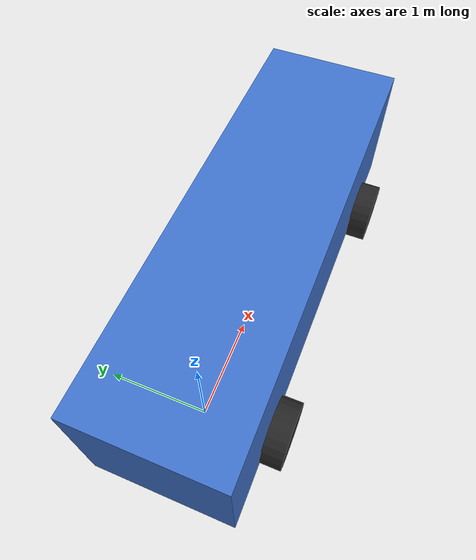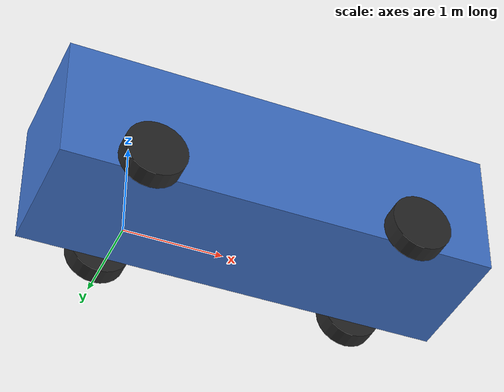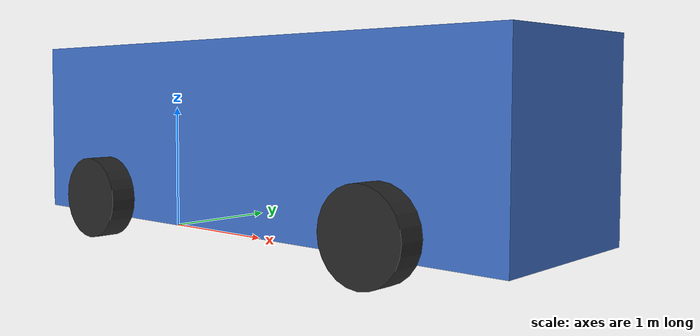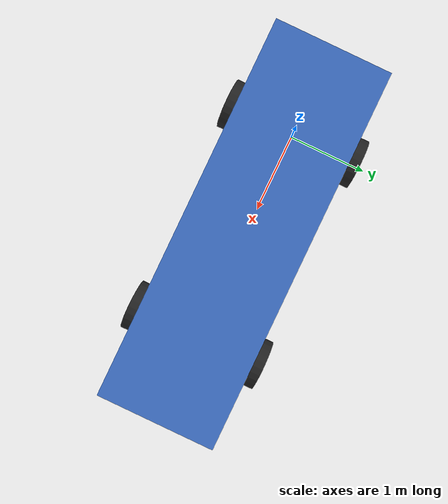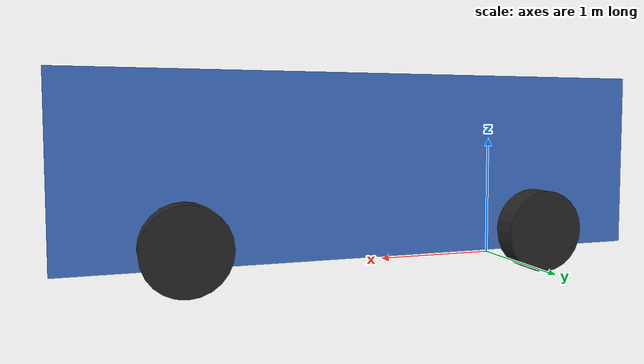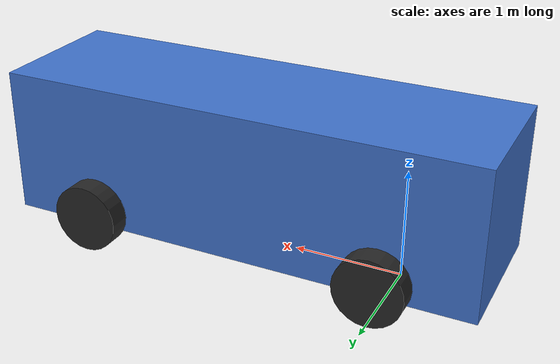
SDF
<?xml version="1.0" ?>
<sdf version="1.9">
  <model name="ego_vehicle">
    <link name="base_link">
      <inertial>
        <!-- 质心不在几何中心：真车质量集中在下半部，用 com_height_m 显式指定。
             放在几何中心会让车过弯时侧倾偏大，看着像悬架太软。 -->
        <pose>1.3500 0 0.5500 0 0 0</pose>
        <mass>1440.0000</mass>
        <inertia>
          <ixx>434.172000</ixx><iyy>2538.672000</iyy><izz>2541.900000</izz>
          <ixy>0</ixy><ixz>0</ixz><iyz>0</iyz>
        </inertia>
      </inertial>
      <collision name="collision">
        <pose>1.3500 0 0.8300 0 0 0</pose>
        <geometry>
          <box><size>4.4000 1.3500 1.3400</size></box>
        </geometry>
      </collision>
      <visual name="visual">
        <pose>1.3500 0 0.8300 0 0 0</pose>
        <geometry>
          <box><size>4.4000 1.3500 1.3400</size></box>
        </geometry>
        <material>
          <ambient>0.2 0.35 0.6 1</ambient>
          <diffuse>0.25 0.45 0.8 1</diffuse>
        </material>
      </visual>

      <sensor name="lidar" type="gpu_lidar">
        <pose>1.3500 0.0000 2.2000 0 0 0</pose>
        <topic>/model/ego_vehicle/lidar</topic>
        <gz_frame_id>lidar_link</gz_frame_id>
        <update_rate>10.0</update_rate>
        <always_on>1</always_on>
        <!-- visualize 只影响 Gazebo GUI 里画不画射线。开着很直观，但几万条
             射线的绘制开销不小，会拉低 RTF —— 调试时临时开，平时关。 -->
        <visualize>false</visualize>
        <lidar>
          <scan>
            <horizontal>
              <samples>1800</samples>
              <resolution>1</resolution>
              <min_angle>-3.141593</min_angle>
              <max_angle>3.141593</max_angle>
            </horizontal>
            <vertical>
              <samples>32</samples>
              <resolution>1</resolution>
              <min_angle>-0.436300</min_angle>
              <max_angle>0.174500</max_angle>
            </vertical>
          </scan>
          <range>
            <min>2.2000</min>
            <max>50.0000</max>
            <!-- 距离量化步长。真实雷达受 ADC 位数限制，这里给 1 cm。 -->
            <resolution>0.01</resolution>
          </range>
          <noise>
            <type>gaussian</type>
            <mean>0.0</mean>
            <stddev>0.0100</stddev>
          </noise>
        </lidar>
      </sensor>

      <sensor name="imu" type="imu">
        <!-- 位姿为全零：IMU 就装在 base_link 原点，见 YAML 里关于杠杆臂的说明。 -->
        <pose>0.0000 0.0000 0.0000 0 0 0</pose>
        <topic>/model/ego_vehicle/imu</topic>
        <gz_frame_id>base_link</gz_frame_id>
        <update_rate>100.0</update_rate>
        <always_on>1</always_on>
        <imu>
          <angular_velocity>
          <x>
            <noise type="gaussian">
              <mean>0.0</mean>
              <stddev>0.00087</stddev>
              <bias_mean>0.0</bias_mean>
              <bias_stddev>0.001</bias_stddev>
              <dynamic_bias_stddev>4.8e-05</dynamic_bias_stddev>
              <dynamic_bias_correlation_time>100</dynamic_bias_correlation_time>
            </noise>
          </x>
          <y>
            <noise type="gaussian">
              <mean>0.0</mean>
              <stddev>0.00087</stddev>
              <bias_mean>0.0</bias_mean>
              <bias_stddev>0.001</bias_stddev>
              <dynamic_bias_stddev>4.8e-05</dynamic_bias_stddev>
              <dynamic_bias_correlation_time>100</dynamic_bias_correlation_time>
            </noise>
          </y>
          <z>
            <noise type="gaussian">
              <mean>0.0</mean>
              <stddev>0.00087</stddev>
              <bias_mean>0.0</bias_mean>
              <bias_stddev>0.001</bias_stddev>
              <dynamic_bias_stddev>4.8e-05</dynamic_bias_stddev>
              <dynamic_bias_correlation_time>100</dynamic_bias_correlation_time>
            </noise>
          </z>
          </angular_velocity>
          <linear_acceleration>
          <x>
            <noise type="gaussian">
              <mean>0.0</mean>
              <stddev>0.01</stddev>
              <bias_mean>0.0</bias_mean>
              <bias_stddev>0.02</bias_stddev>
              <dynamic_bias_stddev>0.0001</dynamic_bias_stddev>
              <dynamic_bias_correlation_time>100</dynamic_bias_correlation_time>
            </noise>
          </x>
          <y>
            <noise type="gaussian">
              <mean>0.0</mean>
              <stddev>0.01</stddev>
              <bias_mean>0.0</bias_mean>
              <bias_stddev>0.02</bias_stddev>
              <dynamic_bias_stddev>0.0001</dynamic_bias_stddev>
              <dynamic_bias_correlation_time>100</dynamic_bias_correlation_time>
            </noise>
          </y>
          <z>
            <noise type="gaussian">
              <mean>0.0</mean>
              <stddev>0.01</stddev>
              <bias_mean>0.0</bias_mean>
              <bias_stddev>0.02</bias_stddev>
              <dynamic_bias_stddev>0.0001</dynamic_bias_stddev>
              <dynamic_bias_correlation_time>100</dynamic_bias_correlation_time>
            </noise>
          </z>
          </linear_acceleration>
        </imu>
      </sensor>

      <sensor name="navsat" type="navsat">
        <pose>0.5000 0.0000 1.6000 0 0 0</pose>
        <topic>/model/ego_vehicle/navsat</topic>
        <gz_frame_id>gnss_link</gz_frame_id>
        <update_rate>10.0</update_rate>
        <always_on>1</always_on>
        <navsat>
          <position_sensing>
            <horizontal>
              <noise type="gaussian">
                <mean>0.0</mean>
                <stddev>1.79662e-05</stddev>
              </noise>
            </horizontal>
            <vertical>
              <noise type="gaussian">
                <mean>0.0</mean>
                <stddev>4</stddev>
              </noise>
            </vertical>
          </position_sensing>
          <velocity_sensing>
            <horizontal>
              <noise type="gaussian">
                <mean>0.0</mean>
                <stddev>0.05</stddev>
              </noise>
            </horizontal>
            <vertical>
              <noise type="gaussian">
                <mean>0.0</mean>
                <stddev>0.1</stddev>
              </noise>
            </vertical>
          </velocity_sensing>
        </navsat>
      </sensor>
    </link>

    <link name="front_left_steer_link">
      <pose>2.7000 0.7750 0.3100 0 0 0</pose>
      <inertial>
        <mass>1.0</mass>
        <inertia>
          <ixx>0.01</ixx><iyy>0.01</iyy><izz>0.01</izz>
          <ixy>0</ixy><ixz>0</ixz><iyz>0</iyz>
        </inertia>
      </inertial>
    </link>

    <link name="front_right_steer_link">
      <pose>2.7000 -0.7750 0.3100 0 0 0</pose>
      <inertial>
        <mass>1.0</mass>
        <inertia>
          <ixx>0.01</ixx><iyy>0.01</iyy><izz>0.01</izz>
          <ixy>0</ixy><ixz>0</ixz><iyz>0</iyz>
        </inertia>
      </inertial>
    </link>

    <link name="front_left_wheel">
      <pose>2.7000 0.7750 0.3100 0 0 0</pose>
      <inertial>
        <mass>15.0000</mass>
        <inertia>
          <ixx>0.410375</ixx><iyy>0.720750</iyy><izz>0.410375</izz>
          <ixy>0</ixy><ixz>0</ixz><iyz>0</iyz>
        </inertia>
      </inertial>
      <collision name="collision">
        <pose>0 0 0 1.5707963 0 0</pose>
        <geometry>
          <cylinder><radius>0.3100</radius><length>0.2000</length></cylinder>
        </geometry>
        <surface>
          <friction>
            <ode><mu>1.2</mu><mu2>1.0</mu2></ode>
          </friction>
        </surface>
      </collision>
      <visual name="visual">
        <pose>0 0 0 1.5707963 0 0</pose>
        <geometry>
          <cylinder><radius>0.3100</radius><length>0.2000</length></cylinder>
        </geometry>
        <material>
          <ambient>0.1 0.1 0.1 1</ambient>
          <diffuse>0.15 0.15 0.15 1</diffuse>
        </material>
      </visual>
    </link>

    <link name="front_right_wheel">
      <pose>2.7000 -0.7750 0.3100 0 0 0</pose>
      <inertial>
        <mass>15.0000</mass>
        <inertia>
          <ixx>0.410375</ixx><iyy>0.720750</iyy><izz>0.410375</izz>
          <ixy>0</ixy><ixz>0</ixz><iyz>0</iyz>
        </inertia>
      </inertial>
      <collision name="collision">
        <pose>0 0 0 1.5707963 0 0</pose>
        <geometry>
          <cylinder><radius>0.3100</radius><length>0.2000</length></cylinder>
        </geometry>
        <surface>
          <friction>
            <ode><mu>1.2</mu><mu2>1.0</mu2></ode>
          </friction>
        </surface>
      </collision>
      <visual name="visual">
        <pose>0 0 0 1.5707963 0 0</pose>
        <geometry>
          <cylinder><radius>0.3100</radius><length>0.2000</length></cylinder>
        </geometry>
        <material>
          <ambient>0.1 0.1 0.1 1</ambient>
          <diffuse>0.15 0.15 0.15 1</diffuse>
        </material>
      </visual>
    </link>

    <link name="rear_left_wheel">
      <pose>0.0000 0.7750 0.3100 0 0 0</pose>
      <inertial>
        <mass>15.0000</mass>
        <inertia>
          <ixx>0.410375</ixx><iyy>0.720750</iyy><izz>0.410375</izz>
          <ixy>0</ixy><ixz>0</ixz><iyz>0</iyz>
        </inertia>
      </inertial>
      <collision name="collision">
        <pose>0 0 0 1.5707963 0 0</pose>
        <geometry>
          <cylinder><radius>0.3100</radius><length>0.2000</length></cylinder>
        </geometry>
        <surface>
          <friction>
            <ode><mu>1.2</mu><mu2>1.0</mu2></ode>
          </friction>
        </surface>
      </collision>
      <visual name="visual">
        <pose>0 0 0 1.5707963 0 0</pose>
        <geometry>
          <cylinder><radius>0.3100</radius><length>0.2000</length></cylinder>
        </geometry>
        <material>
          <ambient>0.1 0.1 0.1 1</ambient>
          <diffuse>0.15 0.15 0.15 1</diffuse>
        </material>
      </visual>
    </link>

    <link name="rear_right_wheel">
      <pose>0.0000 -0.7750 0.3100 0 0 0</pose>
      <inertial>
        <mass>15.0000</mass>
        <inertia>
          <ixx>0.410375</ixx><iyy>0.720750</iyy><izz>0.410375</izz>
          <ixy>0</ixy><ixz>0</ixz><iyz>0</iyz>
        </inertia>
      </inertial>
      <collision name="collision">
        <pose>0 0 0 1.5707963 0 0</pose>
        <geometry>
          <cylinder><radius>0.3100</radius><length>0.2000</length></cylinder>
        </geometry>
        <surface>
          <friction>
            <ode><mu>1.2</mu><mu2>1.0</mu2></ode>
          </friction>
        </surface>
      </collision>
      <visual name="visual">
        <pose>0 0 0 1.5707963 0 0</pose>
        <geometry>
          <cylinder><radius>0.3100</radius><length>0.2000</length></cylinder>
        </geometry>
        <material>
          <ambient>0.1 0.1 0.1 1</ambient>
          <diffuse>0.15 0.15 0.15 1</diffuse>
        </material>
      </visual>
    </link>

    <joint name="front_left_steer_joint" type="revolute">
      <parent>base_link</parent>
      <child>front_left_steer_link</child>
      <axis>
        <xyz>0 0 1</xyz>
        <limit>
          <lower>-0.6000</lower><upper>0.6000</upper>
          <effort>1.0e6</effort>
        </limit>
      </axis>
    </joint>
    <joint name="front_right_steer_joint" type="revolute">
      <parent>base_link</parent>
      <child>front_right_steer_link</child>
      <axis>
        <xyz>0 0 1</xyz>
        <limit>
          <lower>-0.6000</lower><upper>0.6000</upper>
          <effort>1.0e6</effort>
        </limit>
      </axis>
    </joint>

    <!-- 前轮滚动关节挂在转向节下，不是挂在车体上 —— 这样转向和滚动才是两个自由度 -->
    <joint name="front_left_wheel_joint" type="revolute">
      <parent>front_left_steer_link</parent>
      <child>front_left_wheel</child>
      <axis>
        <xyz>0 1 0</xyz>
        <limit><lower>-1e16</lower><upper>1e16</upper></limit>
      </axis>
    </joint>
    <joint name="front_right_wheel_joint" type="revolute">
      <parent>front_right_steer_link</parent>
      <child>front_right_wheel</child>
      <axis>
        <xyz>0 1 0</xyz>
        <limit><lower>-1e16</lower><upper>1e16</upper></limit>
      </axis>
    </joint>

    <!-- 后轮为驱动轮 -->
    <joint name="rear_left_wheel_joint" type="revolute">
      <parent>base_link</parent>
      <child>rear_left_wheel</child>
      <axis>
        <xyz>0 1 0</xyz>
        <limit><lower>-1e16</lower><upper>1e16</upper></limit>
      </axis>
    </joint>
    <joint name="rear_right_wheel_joint" type="revolute">
      <parent>base_link</parent>
      <child>rear_right_wheel</child>
      <axis>
        <xyz>0 1 0</xyz>
        <limit><lower>-1e16</lower><upper>1e16</upper></limit>
      </axis>
    </joint>

    <plugin filename="gz-sim-ackermann-steering-system"
            name="gz::sim::systems::AckermannSteering">
      <left_joint>rear_left_wheel_joint</left_joint>
      <right_joint>rear_right_wheel_joint</right_joint>
      <left_steering_joint>front_left_steer_joint</left_steering_joint>
      <right_steering_joint>front_right_steer_joint</right_steering_joint>
      <kingpin_width>1.5500</kingpin_width>
      <steering_limit>0.6000</steering_limit>
      <steer_p_gain>20.0000</steer_p_gain>
      <wheel_base>2.7000</wheel_base>
      <wheel_separation>1.5500</wheel_separation>
      <wheel_radius>0.3100</wheel_radius>
      <min_velocity>-8.3330</min_velocity>
      <max_velocity>8.3330</max_velocity>
      <min_acceleration>-3.0000</min_acceleration>
      <max_acceleration>1.5000</max_acceleration>
      <topic>/model/ego_vehicle/cmd_vel</topic>
      <odom_topic>/model/ego_vehicle/odometry</odom_topic>
      <tf_topic>/model/ego_vehicle/tf</tf_topic>
      <frame_id>odom</frame_id>
      <child_frame_id>base_link</child_frame_id>
    </plugin>

    <plugin filename="gz-sim-odometry-publisher-system"
            name="gz::sim::systems::OdometryPublisher">
      <odom_frame>map</odom_frame>
      <robot_base_frame>base_link</robot_base_frame>
      <odom_topic>/model/ego_vehicle/pose_gt</odom_topic>
      <tf_topic>/model/ego_vehicle/pose_gt_tf_unused</tf_topic>
      <dimensions>3</dimensions>
      <odom_publish_frequency>50</odom_publish_frequency>
    </plugin>

    <plugin filename="gz-sim-joint-state-publisher-system"
            name="gz::sim::systems::JointStatePublisher">
      <topic>/model/ego_vehicle/joint_state</topic>
    </plugin>
  </model>
</sdf>
